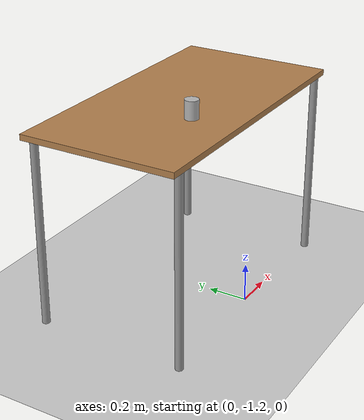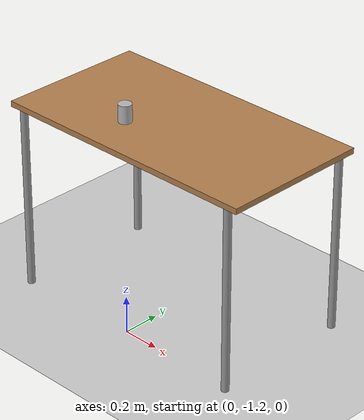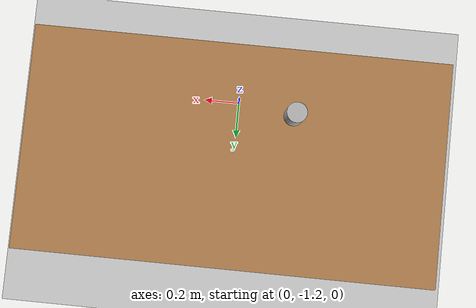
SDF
<sdf version="1.4">
 <world name="default">
  <include><uri>model://ground_plane</uri></include>
  <include><uri>model://sun</uri></include>
  <include><uri>model://table</uri><name>table</name><pose>0.0 -0.84 0 0 0 0</pose></include>
  <include><uri>model://beer</uri><name>beer</name><pose>-0.2 -1.0 1.05 0 0 0</pose></include>
  <physics type="ode">
   <max_step_size>0.001</max_step_size>
   <real_time_factor>1</real_time_factor>
   <real_time_update_rate>1000</real_time_update_rate>
   <gravity>0 0 -0.5</gravity>
  </physics>
 </world>
</sdf>

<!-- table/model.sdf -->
<sdf version="1.5">
  <model name="table">
    <static>true</static>
    <link name="link">
      <collision name="surface">
        <pose>0 0 1.0 0 0 0</pose>
        <geometry>
          <box>
            <size>1.5 0.8 0.03</size>
          </box>
        </geometry>
        <surface>
          <friction>
            <ode>
              <mu>0.6</mu>
              <mu2>0.6</mu2>
            </ode>
          </friction>
        </surface>
      </collision>
      <visual name="visual1">
        <pose>0 0 1.0 0 0 0</pose>
        <geometry>
          <box>
            <size>1.5 0.8 0.03</size>
          </box>
        </geometry>
        <material>
          <script>
            <uri>model://media/materials/scripts/gazebo.material</uri>
            <name>Gazebo/Wood</name>
          </script>
        </material>
      </visual>
      <collision name="front_left_leg">
        <pose>0.68 0.38 0.5 0 0 0</pose>
        <geometry>
          <cylinder>
            <radius>0.02</radius>
            <length>1.0</length>
          </cylinder>
        </geometry>
      </collision>
      <visual name="front_left_leg">
        <pose>0.68 0.38 0.5 0 0 0</pose>
        <geometry>
          <cylinder>
            <radius>0.02</radius>
            <length>1.0</length>
          </cylinder>
        </geometry>
        <material>
          <script>
            <uri>model://media/materials/scripts/gazebo.material</uri>
            <name>Gazebo/Grey</name>
          </script>
        </material>
      </visual>
      <collision name="front_right_leg">
        <pose>0.68 -0.38 0.5 0 0 0</pose>
        <geometry>
          <cylinder>
            <radius>0.02</radius>
            <length>1.0</length>
          </cylinder>
        </geometry>
      </collision>
      <visual name="front_right_leg">
        <pose>0.68 -0.38 0.5 0 0 0</pose>
        <geometry>
          <cylinder>
            <radius>0.02</radius>
            <length>1.0</length>
          </cylinder>
        </geometry>
        <material>
          <script>
            <uri>model://media/materials/scripts/gazebo.material</uri>
            <name>Gazebo/Grey</name>
          </script>
        </material>
      </visual>
      <collision name="back_right_leg">
        <pose>-0.68 -0.38 0.5 0 0 0</pose>
        <geometry>
          <cylinder>
            <radius>0.02</radius>
            <length>1.0</length>
          </cylinder>
        </geometry>
      </collision>
      <visual name="back_right_leg">
        <pose>-0.68 -0.38 0.5 0 0 0</pose>
        <geometry>
          <cylinder>
            <radius>0.02</radius>
            <length>1.0</length>
          </cylinder>
        </geometry>
        <material>
          <script>
            <uri>model://media/materials/scripts/gazebo.material</uri>
            <name>Gazebo/Grey</name>
          </script>
        </material>
      </visual>
      <collision name="back_left_leg">
        <pose>-0.68 0.38 0.5 0 0 0</pose>
        <geometry>
          <cylinder>
            <radius>0.02</radius>
            <length>1.0</length>
          </cylinder>
        </geometry>
      </collision>
      <visual name="back_left_leg">
        <pose>-0.68 0.38 0.5 0 0 0</pose>
        <geometry>
          <cylinder>
            <radius>0.02</radius>
            <length>1.0</length>
          </cylinder>
        </geometry>
        <material>
          <script>
            <uri>model://media/materials/scripts/gazebo.material</uri>
            <name>Gazebo/Grey</name>
          </script>
        </material>
      </visual>
    </link>
  </model>
</sdf>

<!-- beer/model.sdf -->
<sdf version='1.4'>
  <model name="beer">
    <link name='link'>
      <pose>0 0 0 0 0 0</pose>
      <inertial>
        <mass>0.390</mass>
        <inertia>
          <ixx>0.00058</ixx>
          <ixy>0</ixy>
          <ixz>0</ixz>
          <iyy>0.00058</iyy>
          <iyz>0</iyz>
          <izz>0.00025</izz>
        </inertia>
      </inertial>
      <collision name='collision'>
        <geometry>
          <cylinder>
            <radius>0.03500</radius>
            <length>0.12000</length>
          </cylinder>
        </geometry>
      </collision>

      <visual name='visual'>
        <geometry>
          <cylinder>
            <radius>0.03500</radius>
            <length>0.12000</length>
          </cylinder>
        </geometry>

        <material>
          <script>
            <uri>model://beer/materials/scripts</uri>
            <uri>model://beer/materials/textures</uri>
            <name>Beer/Diffuse</name>
          </script>
        </material>
      </visual>
    </link>
  </model>
</sdf>
